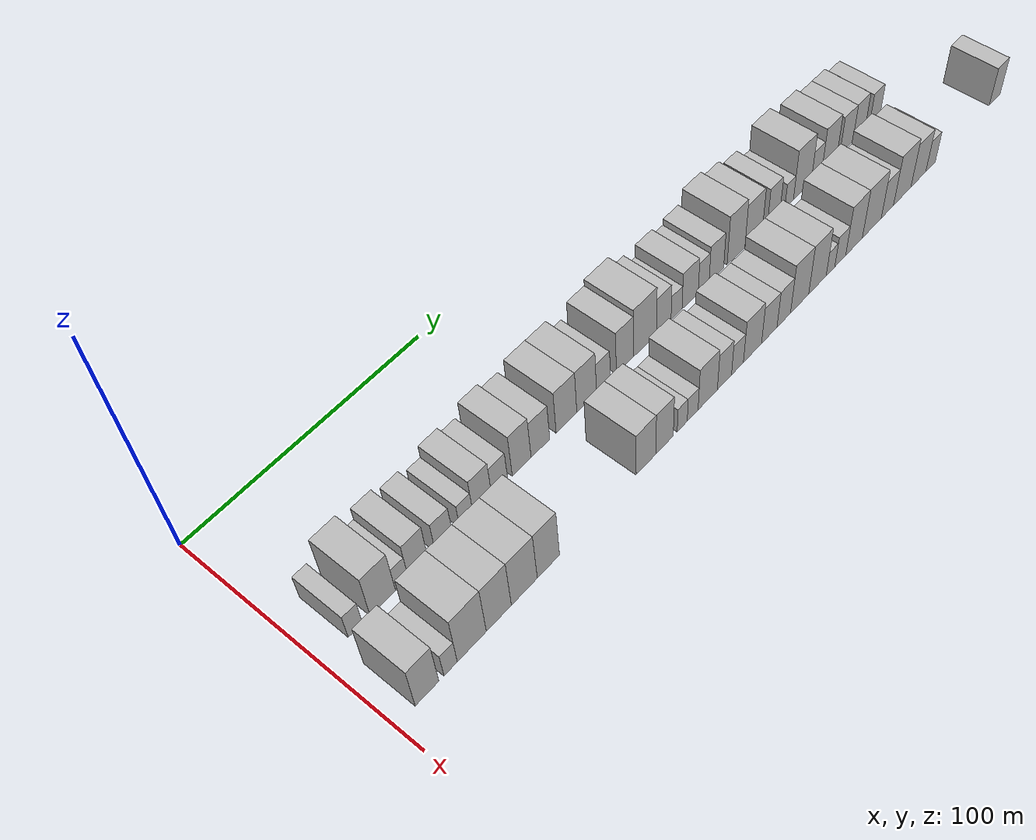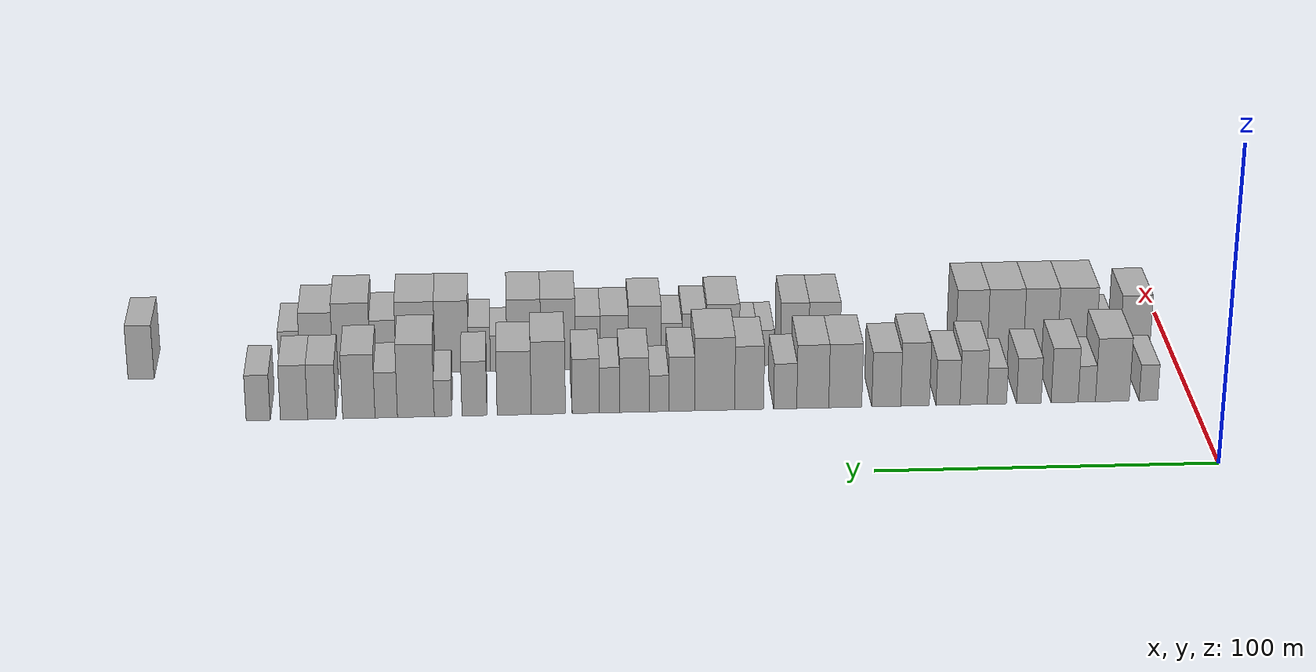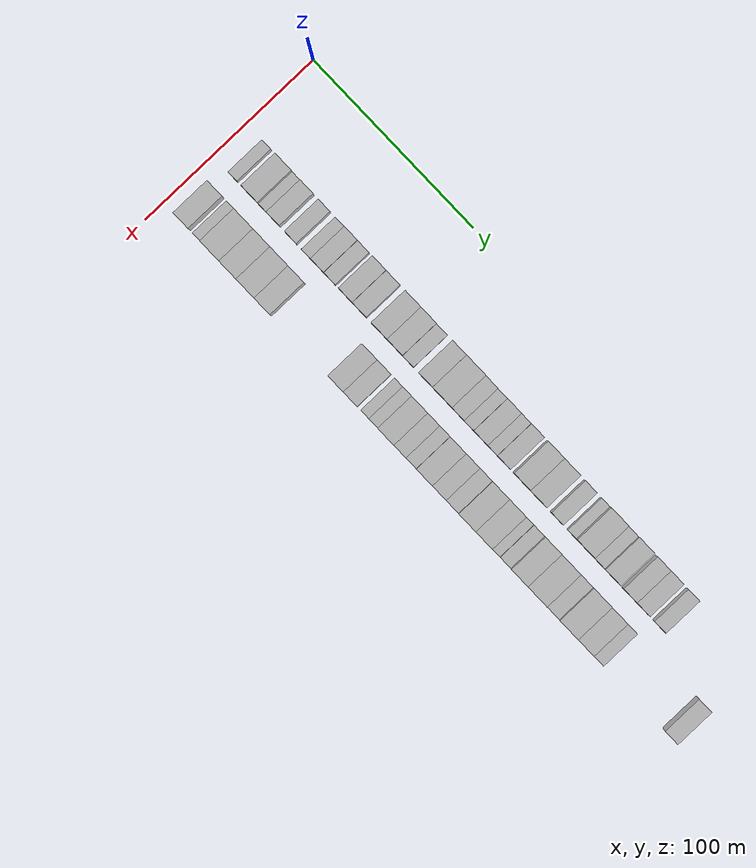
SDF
<sdf version="1.6">
 <world name="default">
  <model name="building_33">
   <static>1</static>
   <pose>50.0000 13.1931 0 0.000000 0.000000 0.000000</pose>
   <link name="link">
    <pose>0 0 6.00 0 0 0</pose>
    <collision name="collision"><geometry><box><size>20.0000 5.6048 12.0000</size></box></geometry></collision>
    <visual name="visual">
     <cast_shadows>0</cast_shadows>
     <geometry><box><size>20.0000 5.6048 12.0000</size></box></geometry>
     <material>
      <script>
       <uri>model://HANNAS_wall/materials/scripts</uri>
       <uri>model://HANNAS_wall/materials/textures</uri>
       <name>vrc/HANNAS_wall</name>
      </script>
     </material>
    </visual>
   </link>
  </model>
  <model name="building_34">
   <static>1</static>
   <pose>50.0000 24.0938 0 0.000000 0.000000 0.000000</pose>
   <link name="link">
    <pose>0 0 10.50 0 0 0</pose>
    <collision name="collision"><geometry><box><size>20.0000 10.1967 21.0000</size></box></geometry></collision>
    <visual name="visual">
     <cast_shadows>0</cast_shadows>
     <geometry><box><size>20.0000 10.1967 21.0000</size></box></geometry>
     <material>
      <script>
       <uri>model://HANNAS_wall/materials/scripts</uri>
       <uri>model://HANNAS_wall/materials/textures</uri>
       <name>vrc/HANNAS_wall</name>
      </script>
     </material>
    </visual>
   </link>
  </model>
  <model name="building_35">
   <static>1</static>
   <pose>50.0000 31.8113 0 0.000000 0.000000 0.000000</pose>
   <link name="link">
    <pose>0 0 6.00 0 0 0</pose>
    <collision name="collision"><geometry><box><size>20.0000 5.2383 12.0000</size></box></geometry></collision>
    <visual name="visual">
     <cast_shadows>0</cast_shadows>
     <geometry><box><size>20.0000 5.2383 12.0000</size></box></geometry>
     <material>
      <script>
       <uri>model://HANNAS_wall/materials/scripts</uri>
       <uri>model://HANNAS_wall/materials/textures</uri>
       <name>vrc/HANNAS_wall</name>
      </script>
     </material>
    </visual>
   </link>
  </model>
  <model name="building_36">
   <static>1</static>
   <pose>50.0000 38.5017 0 0.000000 0.000000 0.000000</pose>
   <link name="link">
    <pose>0 0 9.00 0 0 0</pose>
    <collision name="collision"><geometry><box><size>20.0000 8.1425 18.0000</size></box></geometry></collision>
    <visual name="visual">
     <cast_shadows>0</cast_shadows>
     <geometry><box><size>20.0000 8.1425 18.0000</size></box></geometry>
     <material>
      <script>
       <uri>model://HANNAS_wall/materials/scripts</uri>
       <uri>model://HANNAS_wall/materials/textures</uri>
       <name>vrc/HANNAS_wall</name>
      </script>
     </material>
    </visual>
   </link>
  </model>
  <model name="building_37">
   <static>1</static>
   <pose>50.0000 49.2781 0 0.000000 0.000000 0.000000</pose>
   <link name="link">
    <pose>0 0 7.50 0 0 0</pose>
    <collision name="collision"><geometry><box><size>20.0000 7.4103 15.0000</size></box></geometry></collision>
    <visual name="visual">
     <cast_shadows>0</cast_shadows>
     <geometry><box><size>20.0000 7.4103 15.0000</size></box></geometry>
     <material>
      <script>
       <uri>model://HANNAS_wall/materials/scripts</uri>
       <uri>model://HANNAS_wall/materials/textures</uri>
       <name>vrc/HANNAS_wall</name>
      </script>
     </material>
    </visual>
   </link>
  </model>
  <model name="building_38">
   <static>1</static>
   <pose>50.0000 58.9026 0 0.000000 0.000000 0.000000</pose>
   <link name="link">
    <pose>0 0 6.00 0 0 0</pose>
    <collision name="collision"><geometry><box><size>20.0000 5.8385 12.0000</size></box></geometry></collision>
    <visual name="visual">
     <cast_shadows>0</cast_shadows>
     <geometry><box><size>20.0000 5.8385 12.0000</size></box></geometry>
     <material>
      <script>
       <uri>model://HANNAS_wall/materials/scripts</uri>
       <uri>model://HANNAS_wall/materials/textures</uri>
       <name>vrc/HANNAS_wall</name>
      </script>
     </material>
    </visual>
   </link>
  </model>
  <model name="building_39">
   <static>1</static>
   <pose>50.0000 65.9199 0 0.000000 0.000000 0.000000</pose>
   <link name="link">
    <pose>0 0 9.00 0 0 0</pose>
    <collision name="collision"><geometry><box><size>20.0000 8.1960 18.0000</size></box></geometry></collision>
    <visual name="visual">
     <cast_shadows>0</cast_shadows>
     <geometry><box><size>20.0000 8.1960 18.0000</size></box></geometry>
     <material>
      <script>
       <uri>model://HANNAS_wall/materials/scripts</uri>
       <uri>model://HANNAS_wall/materials/textures</uri>
       <name>vrc/HANNAS_wall</name>
      </script>
     </material>
    </visual>
   </link>
  </model>
  <model name="building_40">
   <static>1</static>
   <pose>50.0000 73.6145 0 0.000000 0.000000 0.000000</pose>
   <link name="link">
    <pose>0 0 7.50 0 0 0</pose>
    <collision name="collision"><geometry><box><size>20.0000 7.1932 15.0000</size></box></geometry></collision>
    <visual name="visual">
     <cast_shadows>0</cast_shadows>
     <geometry><box><size>20.0000 7.1932 15.0000</size></box></geometry>
     <material>
      <script>
       <uri>model://HANNAS_wall/materials/scripts</uri>
       <uri>model://HANNAS_wall/materials/textures</uri>
       <name>vrc/HANNAS_wall</name>
      </script>
     </material>
    </visual>
   </link>
  </model>
  <model name="building_41">
   <static>1</static>
   <pose>50.0000 83.5099 0 0.000000 0.000000 0.000000</pose>
   <link name="link">
    <pose>0 0 10.50 0 0 0</pose>
    <collision name="collision"><geometry><box><size>20.0000 8.5977 21.0000</size></box></geometry></collision>
    <visual name="visual">
     <cast_shadows>0</cast_shadows>
     <geometry><box><size>20.0000 8.5977 21.0000</size></box></geometry>
     <material>
      <script>
       <uri>model://HANNAS_wall/materials/scripts</uri>
       <uri>model://HANNAS_wall/materials/textures</uri>
       <name>vrc/HANNAS_wall</name>
      </script>
     </material>
    </visual>
   </link>
  </model>
  <model name="building_42">
   <static>1</static>
   <pose>50.0000 92.1549 0 0.000000 0.000000 0.000000</pose>
   <link name="link">
    <pose>0 0 9.00 0 0 0</pose>
    <collision name="collision"><geometry><box><size>20.0000 8.6923 18.0000</size></box></geometry></collision>
    <visual name="visual">
     <cast_shadows>0</cast_shadows>
     <geometry><box><size>20.0000 8.6923 18.0000</size></box></geometry>
     <material>
      <script>
       <uri>model://HANNAS_wall/materials/scripts</uri>
       <uri>model://HANNAS_wall/materials/textures</uri>
       <name>vrc/HANNAS_wall</name>
      </script>
     </material>
    </visual>
   </link>
  </model>
  <model name="building_43">
   <static>1</static>
   <pose>50.0000 104.4483 0 0.000000 0.000000 0.000000</pose>
   <link name="link">
    <pose>0 0 10.50 0 0 0</pose>
    <collision name="collision"><geometry><box><size>20.0000 9.8944 21.0000</size></box></geometry></collision>
    <visual name="visual">
     <cast_shadows>0</cast_shadows>
     <geometry><box><size>20.0000 9.8944 21.0000</size></box></geometry>
     <material>
      <script>
       <uri>model://HANNAS_wall/materials/scripts</uri>
       <uri>model://HANNAS_wall/materials/textures</uri>
       <name>vrc/HANNAS_wall</name>
      </script>
     </material>
    </visual>
   </link>
  </model>
  <model name="building_44">
   <static>1</static>
   <pose>50.0000 114.1976 0 0.000000 0.000000 0.000000</pose>
   <link name="link">
    <pose>0 0 10.50 0 0 0</pose>
    <collision name="collision"><geometry><box><size>20.0000 9.6041 21.0000</size></box></geometry></collision>
    <visual name="visual">
     <cast_shadows>0</cast_shadows>
     <geometry><box><size>20.0000 9.6041 21.0000</size></box></geometry>
     <material>
      <script>
       <uri>model://HANNAS_wall/materials/scripts</uri>
       <uri>model://HANNAS_wall/materials/textures</uri>
       <name>vrc/HANNAS_wall</name>
      </script>
     </material>
    </visual>
   </link>
  </model>
  <model name="building_45">
   <static>1</static>
   <pose>50.0000 122.4412 0 0.000000 0.000000 0.000000</pose>
   <link name="link">
    <pose>0 0 7.50 0 0 0</pose>
    <collision name="collision"><geometry><box><size>20.0000 6.8831 15.0000</size></box></geometry></collision>
    <visual name="visual">
     <cast_shadows>0</cast_shadows>
     <geometry><box><size>20.0000 6.8831 15.0000</size></box></geometry>
     <material>
      <script>
       <uri>model://HANNAS_wall/materials/scripts</uri>
       <uri>model://HANNAS_wall/materials/textures</uri>
       <name>vrc/HANNAS_wall</name>
      </script>
     </material>
    </visual>
   </link>
  </model>
  <model name="building_46">
   <static>1</static>
   <pose>50.0000 133.2129 0 0.000000 0.000000 0.000000</pose>
   <link name="link">
    <pose>0 0 10.50 0 0 0</pose>
    <collision name="collision"><geometry><box><size>20.0000 8.6603 21.0000</size></box></geometry></collision>
    <visual name="visual">
     <cast_shadows>0</cast_shadows>
     <geometry><box><size>20.0000 8.6603 21.0000</size></box></geometry>
     <material>
      <script>
       <uri>model://HANNAS_wall/materials/scripts</uri>
       <uri>model://HANNAS_wall/materials/textures</uri>
       <name>vrc/HANNAS_wall</name>
      </script>
     </material>
    </visual>
   </link>
  </model>
  <model name="building_47">
   <static>1</static>
   <pose>50.0000 143.5383 0 0.000000 0.000000 0.000000</pose>
   <link name="link">
    <pose>0 0 12.00 0 0 0</pose>
    <collision name="collision"><geometry><box><size>20.0000 11.9904 24.0000</size></box></geometry></collision>
    <visual name="visual">
     <cast_shadows>0</cast_shadows>
     <geometry><box><size>20.0000 11.9904 24.0000</size></box></geometry>
     <material>
      <script>
       <uri>model://HANNAS_wall/materials/scripts</uri>
       <uri>model://HANNAS_wall/materials/textures</uri>
       <name>vrc/HANNAS_wall</name>
      </script>
     </material>
    </visual>
   </link>
  </model>
  <model name="building_48">
   <static>1</static>
   <pose>50.0000 153.3709 0 0.000000 0.000000 0.000000</pose>
   <link name="link">
    <pose>0 0 9.00 0 0 0</pose>
    <collision name="collision"><geometry><box><size>20.0000 7.6747 18.0000</size></box></geometry></collision>
    <visual name="visual">
     <cast_shadows>0</cast_shadows>
     <geometry><box><size>20.0000 7.6747 18.0000</size></box></geometry>
     <material>
      <script>
       <uri>model://HANNAS_wall/materials/scripts</uri>
       <uri>model://HANNAS_wall/materials/textures</uri>
       <name>vrc/HANNAS_wall</name>
      </script>
     </material>
    </visual>
   </link>
  </model>
  <model name="building_49">
   <static>1</static>
   <pose>50.0000 160.1628 0 0.000000 0.000000 0.000000</pose>
   <link name="link">
    <pose>0 0 6.00 0 0 0</pose>
    <collision name="collision"><geometry><box><size>20.0000 5.9092 12.0000</size></box></geometry></collision>
    <visual name="visual">
     <cast_shadows>0</cast_shadows>
     <geometry><box><size>20.0000 5.9092 12.0000</size></box></geometry>
     <material>
      <script>
       <uri>model://HANNAS_wall/materials/scripts</uri>
       <uri>model://HANNAS_wall/materials/textures</uri>
       <name>vrc/HANNAS_wall</name>
      </script>
     </material>
    </visual>
   </link>
  </model>
  <model name="building_50">
   <static>1</static>
   <pose>50.0000 167.4937 0 0.000000 0.000000 0.000000</pose>
   <link name="link">
    <pose>0 0 9.00 0 0 0</pose>
    <collision name="collision"><geometry><box><size>20.0000 8.7525 18.0000</size></box></geometry></collision>
    <visual name="visual">
     <cast_shadows>0</cast_shadows>
     <geometry><box><size>20.0000 8.7525 18.0000</size></box></geometry>
     <material>
      <script>
       <uri>model://HANNAS_wall/materials/scripts</uri>
       <uri>model://HANNAS_wall/materials/textures</uri>
       <name>vrc/HANNAS_wall</name>
      </script>
     </material>
    </visual>
   </link>
  </model>
  <model name="building_51">
   <static>1</static>
   <pose>50.0000 174.8730 0 0.000000 0.000000 0.000000</pose>
   <link name="link">
    <pose>0 0 7.50 0 0 0</pose>
    <collision name="collision"><geometry><box><size>20.0000 6.0060 15.0000</size></box></geometry></collision>
    <visual name="visual">
     <cast_shadows>0</cast_shadows>
     <geometry><box><size>20.0000 6.0060 15.0000</size></box></geometry>
     <material>
      <script>
       <uri>model://HANNAS_wall/materials/scripts</uri>
       <uri>model://HANNAS_wall/materials/textures</uri>
       <name>vrc/HANNAS_wall</name>
      </script>
     </material>
    </visual>
   </link>
  </model>
  <model name="building_52">
   <static>1</static>
   <pose>50.0000 181.9415 0 0.000000 0.000000 0.000000</pose>
   <link name="link">
    <pose>0 0 9.00 0 0 0</pose>
    <collision name="collision"><geometry><box><size>20.0000 8.1310 18.0000</size></box></geometry></collision>
    <visual name="visual">
     <cast_shadows>0</cast_shadows>
     <geometry><box><size>20.0000 8.1310 18.0000</size></box></geometry>
     <material>
      <script>
       <uri>model://HANNAS_wall/materials/scripts</uri>
       <uri>model://HANNAS_wall/materials/textures</uri>
       <name>vrc/HANNAS_wall</name>
      </script>
     </material>
    </visual>
   </link>
  </model>
  <model name="building_53">
   <static>1</static>
   <pose>50.0000 193.0817 0 0.000000 0.000000 0.000000</pose>
   <link name="link">
    <pose>0 0 12.00 0 0 0</pose>
    <collision name="collision"><geometry><box><size>20.0000 10.1494 24.0000</size></box></geometry></collision>
    <visual name="visual">
     <cast_shadows>0</cast_shadows>
     <geometry><box><size>20.0000 10.1494 24.0000</size></box></geometry>
     <material>
      <script>
       <uri>model://HANNAS_wall/materials/scripts</uri>
       <uri>model://HANNAS_wall/materials/textures</uri>
       <name>vrc/HANNAS_wall</name>
      </script>
     </material>
    </visual>
   </link>
  </model>
  <model name="building_54">
   <static>1</static>
   <pose>50.0000 203.2365 0 0.000000 0.000000 0.000000</pose>
   <link name="link">
    <pose>0 0 10.50 0 0 0</pose>
    <collision name="collision"><geometry><box><size>20.0000 10.1603 21.0000</size></box></geometry></collision>
    <visual name="visual">
     <cast_shadows>0</cast_shadows>
     <geometry><box><size>20.0000 10.1603 21.0000</size></box></geometry>
     <material>
      <script>
       <uri>model://HANNAS_wall/materials/scripts</uri>
       <uri>model://HANNAS_wall/materials/textures</uri>
       <name>vrc/HANNAS_wall</name>
      </script>
     </material>
    </visual>
   </link>
  </model>
  <model name="building_55">
   <static>1</static>
   <pose>50.0000 215.0271 0 0.000000 0.000000 0.000000</pose>
   <link name="link">
    <pose>0 0 9.00 0 0 0</pose>
    <collision name="collision"><geometry><box><size>20.0000 7.4208 18.0000</size></box></geometry></collision>
    <visual name="visual">
     <cast_shadows>0</cast_shadows>
     <geometry><box><size>20.0000 7.4208 18.0000</size></box></geometry>
     <material>
      <script>
       <uri>model://HANNAS_wall/materials/scripts</uri>
       <uri>model://HANNAS_wall/materials/textures</uri>
       <name>vrc/HANNAS_wall</name>
      </script>
     </material>
    </visual>
   </link>
  </model>
  <model name="building_56">
   <static>1</static>
   <pose>50.0000 224.3459 0 0.000000 0.000000 0.000000</pose>
   <link name="link">
    <pose>0 0 6.00 0 0 0</pose>
    <collision name="collision"><geometry><box><size>20.0000 5.2167 12.0000</size></box></geometry></collision>
    <visual name="visual">
     <cast_shadows>0</cast_shadows>
     <geometry><box><size>20.0000 5.2167 12.0000</size></box></geometry>
     <material>
      <script>
       <uri>model://HANNAS_wall/materials/scripts</uri>
       <uri>model://HANNAS_wall/materials/textures</uri>
       <name>vrc/HANNAS_wall</name>
      </script>
     </material>
    </visual>
   </link>
  </model>
  <model name="building_57">
   <static>1</static>
   <pose>50.0000 232.4189 0 0.000000 0.000000 0.000000</pose>
   <link name="link">
    <pose>0 0 12.00 0 0 0</pose>
    <collision name="collision"><geometry><box><size>20.0000 10.9293 24.0000</size></box></geometry></collision>
    <visual name="visual">
     <cast_shadows>0</cast_shadows>
     <geometry><box><size>20.0000 10.9293 24.0000</size></box></geometry>
     <material>
      <script>
       <uri>model://HANNAS_wall/materials/scripts</uri>
       <uri>model://HANNAS_wall/materials/textures</uri>
       <name>vrc/HANNAS_wall</name>
      </script>
     </material>
    </visual>
   </link>
  </model>
  <model name="building_58">
   <static>1</static>
   <pose>50.0000 241.2010 0 0.000000 0.000000 0.000000</pose>
   <link name="link">
    <pose>0 0 7.50 0 0 0</pose>
    <collision name="collision"><geometry><box><size>20.0000 6.6349 15.0000</size></box></geometry></collision>
    <visual name="visual">
     <cast_shadows>0</cast_shadows>
     <geometry><box><size>20.0000 6.6349 15.0000</size></box></geometry>
     <material>
      <script>
       <uri>model://HANNAS_wall/materials/scripts</uri>
       <uri>model://HANNAS_wall/materials/textures</uri>
       <name>vrc/HANNAS_wall</name>
      </script>
     </material>
    </visual>
   </link>
  </model>
  <model name="building_59">
   <static>1</static>
   <pose>50.0000 249.2946 0 0.000000 0.000000 0.000000</pose>
   <link name="link">
    <pose>0 0 10.50 0 0 0</pose>
    <collision name="collision"><geometry><box><size>20.0000 9.5523 21.0000</size></box></geometry></collision>
    <visual name="visual">
     <cast_shadows>0</cast_shadows>
     <geometry><box><size>20.0000 9.5523 21.0000</size></box></geometry>
     <material>
      <script>
       <uri>model://HANNAS_wall/materials/scripts</uri>
       <uri>model://HANNAS_wall/materials/textures</uri>
       <name>vrc/HANNAS_wall</name>
      </script>
     </material>
    </visual>
   </link>
  </model>
  <model name="building_60">
   <static>1</static>
   <pose>50.0000 260.2479 0 0.000000 0.000000 0.000000</pose>
   <link name="link">
    <pose>0 0 9.00 0 0 0</pose>
    <collision name="collision"><geometry><box><size>20.0000 8.3544 18.0000</size></box></geometry></collision>
    <visual name="visual">
     <cast_shadows>0</cast_shadows>
     <geometry><box><size>20.0000 8.3544 18.0000</size></box></geometry>
     <material>
      <script>
       <uri>model://HANNAS_wall/materials/scripts</uri>
       <uri>model://HANNAS_wall/materials/textures</uri>
       <name>vrc/HANNAS_wall</name>
      </script>
     </material>
    </visual>
   </link>
  </model>
  <model name="building_61">
   <static>1</static>
   <pose>50.0000 268.4460 0 0.000000 0.000000 0.000000</pose>
   <link name="link">
    <pose>0 0 9.00 0 0 0</pose>
    <collision name="collision"><geometry><box><size>20.0000 8.0417 18.0000</size></box></geometry></collision>
    <visual name="visual">
     <cast_shadows>0</cast_shadows>
     <geometry><box><size>20.0000 8.0417 18.0000</size></box></geometry>
     <material>
      <script>
       <uri>model://HANNAS_wall/materials/scripts</uri>
       <uri>model://HANNAS_wall/materials/textures</uri>
       <name>vrc/HANNAS_wall</name>
      </script>
     </material>
    </visual>
   </link>
  </model>
  <model name="building_62">
   <static>1</static>
   <pose>50.0000 279.0263 0 0.000000 0.000000 0.000000</pose>
   <link name="link">
    <pose>0 0 7.50 0 0 0</pose>
    <collision name="collision"><geometry><box><size>20.0000 7.1189 15.0000</size></box></geometry></collision>
    <visual name="visual">
     <cast_shadows>0</cast_shadows>
     <geometry><box><size>20.0000 7.1189 15.0000</size></box></geometry>
     <material>
      <script>
       <uri>model://HANNAS_wall/materials/scripts</uri>
       <uri>model://HANNAS_wall/materials/textures</uri>
       <name>vrc/HANNAS_wall</name>
      </script>
     </material>
    </visual>
   </link>
  </model>
  <model name="building_88">
   <static>1</static>
   <pose>79.0000 12.2239 0 0.000000 0.000000 0.000000</pose>
   <link name="link">
    <pose>0 0 10.50 0 0 0</pose>
    <collision name="collision"><geometry><box><size>20.0000 9.3211 21.0000</size></box></geometry></collision>
    <visual name="visual">
     <cast_shadows>0</cast_shadows>
     <geometry><box><size>20.0000 9.3211 21.0000</size></box></geometry>
     <material>
      <script>
       <uri>model://HANNAS_wall/materials/scripts</uri>
       <uri>model://HANNAS_wall/materials/textures</uri>
       <name>vrc/HANNAS_wall</name>
      </script>
     </material>
    </visual>
   </link>
  </model>
  <model name="building_89">
   <static>1</static>
   <pose>79.0000 21.5728 0 0.000000 0.000000 0.000000</pose>
   <link name="link">
    <pose>0 0 6.00 0 0 0</pose>
    <collision name="collision"><geometry><box><size>20.0000 5.3769 12.0000</size></box></geometry></collision>
    <visual name="visual">
     <cast_shadows>0</cast_shadows>
     <geometry><box><size>20.0000 5.3769 12.0000</size></box></geometry>
     <material>
      <script>
       <uri>model://HANNAS_wall/materials/scripts</uri>
       <uri>model://HANNAS_wall/materials/textures</uri>
       <name>vrc/HANNAS_wall</name>
      </script>
     </material>
    </visual>
   </link>
  </model>
  <model name="building_90">
   <static>1</static>
   <pose>79.0000 30.2121 0 0.000000 0.000000 0.000000</pose>
   <link name="link">
    <pose>0 0 12.00 0 0 0</pose>
    <collision name="collision"><geometry><box><size>20.0000 11.9016 24.0000</size></box></geometry></collision>
    <visual name="visual">
     <cast_shadows>0</cast_shadows>
     <geometry><box><size>20.0000 11.9016 24.0000</size></box></geometry>
     <material>
      <script>
       <uri>model://HANNAS_wall/materials/scripts</uri>
       <uri>model://HANNAS_wall/materials/textures</uri>
       <name>vrc/HANNAS_wall</name>
      </script>
     </material>
    </visual>
   </link>
  </model>
  <model name="building_91">
   <static>1</static>
   <pose>79.0000 41.4280 0 0.000000 0.000000 0.000000</pose>
   <link name="link">
    <pose>0 0 12.00 0 0 0</pose>
    <collision name="collision"><geometry><box><size>20.0000 10.5303 24.0000</size></box></geometry></collision>
    <visual name="visual">
     <cast_shadows>0</cast_shadows>
     <geometry><box><size>20.0000 10.5303 24.0000</size></box></geometry>
     <material>
      <script>
       <uri>model://HANNAS_wall/materials/scripts</uri>
       <uri>model://HANNAS_wall/materials/textures</uri>
       <name>vrc/HANNAS_wall</name>
      </script>
     </material>
    </visual>
   </link>
  </model>
  <model name="building_92">
   <static>1</static>
   <pose>79.0000 52.2700 0 0.000000 0.000000 0.000000</pose>
   <link name="link">
    <pose>0 0 12.00 0 0 0</pose>
    <collision name="collision"><geometry><box><size>20.0000 11.1536 24.0000</size></box></geometry></collision>
    <visual name="visual">
     <cast_shadows>0</cast_shadows>
     <geometry><box><size>20.0000 11.1536 24.0000</size></box></geometry>
     <material>
      <script>
       <uri>model://HANNAS_wall/materials/scripts</uri>
       <uri>model://HANNAS_wall/materials/textures</uri>
       <name>vrc/HANNAS_wall</name>
      </script>
     </material>
    </visual>
   </link>
  </model>
  <model name="building_93">
   <static>1</static>
   <pose>79.0000 62.7478 0 0.000000 0.000000 0.000000</pose>
   <link name="link">
    <pose>0 0 12.00 0 0 0</pose>
    <collision name="collision"><geometry><box><size>20.0000 9.8019 24.0000</size></box></geometry></collision>
    <visual name="visual">
     <cast_shadows>0</cast_shadows>
     <geometry><box><size>20.0000 9.8019 24.0000</size></box></geometry>
     <material>
      <script>
       <uri>model://HANNAS_wall/materials/scripts</uri>
       <uri>model://HANNAS_wall/materials/textures</uri>
       <name>vrc/HANNAS_wall</name>
      </script>
     </material>
    </visual>
   </link>
  </model>
  <model name="building_94">
   <static>1</static>
   <pose>79.0000 108.0521 0 0.000000 0.000000 0.000000</pose>
   <link name="link">
    <pose>0 0 10.50 0 0 0</pose>
    <collision name="collision"><geometry><box><size>20.0000 9.6023 21.0000</size></box></geometry></collision>
    <visual name="visual">
     <cast_shadows>0</cast_shadows>
     <geometry><box><size>20.0000 9.6023 21.0000</size></box></geometry>
     <material>
      <script>
       <uri>model://HANNAS_wall/materials/scripts</uri>
       <uri>model://HANNAS_wall/materials/textures</uri>
       <name>vrc/HANNAS_wall</name>
      </script>
     </material>
    </visual>
   </link>
  </model>
  <model name="building_95">
   <static>1</static>
   <pose>79.0000 117.1748 0 0.000000 0.000000 0.000000</pose>
   <link name="link">
    <pose>0 0 10.50 0 0 0</pose>
    <collision name="collision"><geometry><box><size>20.0000 8.6432 21.0000</size></box></geometry></collision>
    <visual name="visual">
     <cast_shadows>0</cast_shadows>
     <geometry><box><size>20.0000 8.6432 21.0000</size></box></geometry>
     <material>
      <script>
       <uri>model://HANNAS_wall/materials/scripts</uri>
       <uri>model://HANNAS_wall/materials/textures</uri>
       <name>vrc/HANNAS_wall</name>
      </script>
     </material>
    </visual>
   </link>
  </model>
  <model name="building_96">
   <static>1</static>
   <pose>79.0000 126.0329 0 0.000000 0.000000 0.000000</pose>
   <link name="link">
    <pose>0 0 6.00 0 0 0</pose>
    <collision name="collision"><geometry><box><size>20.0000 5.0730 12.0000</size></box></geometry></collision>
    <visual name="visual">
     <cast_shadows>0</cast_shadows>
     <geometry><box><size>20.0000 5.0730 12.0000</size></box></geometry>
     <material>
      <script>
       <uri>model://HANNAS_wall/materials/scripts</uri>
       <uri>model://HANNAS_wall/materials/textures</uri>
       <name>vrc/HANNAS_wall</name>
      </script>
     </material>
    </visual>
   </link>
  </model>
  <model name="building_97">
   <static>1</static>
   <pose>79.0000 131.3431 0 0.000000 0.000000 0.000000</pose>
   <link name="link">
    <pose>0 0 6.00 0 0 0</pose>
    <collision name="collision"><geometry><box><size>20.0000 5.5472 12.0000</size></box></geometry></collision>
    <visual name="visual">
     <cast_shadows>0</cast_shadows>
     <geometry><box><size>20.0000 5.5472 12.0000</size></box></geometry>
     <material>
      <script>
       <uri>model://HANNAS_wall/materials/scripts</uri>
       <uri>model://HANNAS_wall/materials/textures</uri>
       <name>vrc/HANNAS_wall</name>
      </script>
     </material>
    </visual>
   </link>
  </model>
  <model name="building_98">
   <static>1</static>
   <pose>79.0000 139.1339 0 0.000000 0.000000 0.000000</pose>
   <link name="link">
    <pose>0 0 10.50 0 0 0</pose>
    <collision name="collision"><geometry><box><size>20.0000 10.0345 21.0000</size></box></geometry></collision>
    <visual name="visual">
     <cast_shadows>0</cast_shadows>
     <geometry><box><size>20.0000 10.0345 21.0000</size></box></geometry>
     <material>
      <script>
       <uri>model://HANNAS_wall/materials/scripts</uri>
       <uri>model://HANNAS_wall/materials/textures</uri>
       <name>vrc/HANNAS_wall</name>
      </script>
     </material>
    </visual>
   </link>
  </model>
  <model name="building_99">
   <static>1</static>
   <pose>79.0000 147.9029 0 0.000000 0.000000 0.000000</pose>
   <link name="link">
    <pose>0 0 9.00 0 0 0</pose>
    <collision name="collision"><geometry><box><size>20.0000 7.5033 18.0000</size></box></geometry></collision>
    <visual name="visual">
     <cast_shadows>0</cast_shadows>
     <geometry><box><size>20.0000 7.5033 18.0000</size></box></geometry>
     <material>
      <script>
       <uri>model://HANNAS_wall/materials/scripts</uri>
       <uri>model://HANNAS_wall/materials/textures</uri>
       <name>vrc/HANNAS_wall</name>
      </script>
     </material>
    </visual>
   </link>
  </model>
  <model name="building_100">
   <static>1</static>
   <pose>79.0000 154.8564 0 0.000000 0.000000 0.000000</pose>
   <link name="link">
    <pose>0 0 7.50 0 0 0</pose>
    <collision name="collision"><geometry><box><size>20.0000 6.4038 15.0000</size></box></geometry></collision>
    <visual name="visual">
     <cast_shadows>0</cast_shadows>
     <geometry><box><size>20.0000 6.4038 15.0000</size></box></geometry>
     <material>
      <script>
       <uri>model://HANNAS_wall/materials/scripts</uri>
       <uri>model://HANNAS_wall/materials/textures</uri>
       <name>vrc/HANNAS_wall</name>
      </script>
     </material>
    </visual>
   </link>
  </model>
  <model name="building_101">
   <static>1</static>
   <pose>79.0000 163.0214 0 0.000000 0.000000 0.000000</pose>
   <link name="link">
    <pose>0 0 10.50 0 0 0</pose>
    <collision name="collision"><geometry><box><size>20.0000 9.9262 21.0000</size></box></geometry></collision>
    <visual name="visual">
     <cast_shadows>0</cast_shadows>
     <geometry><box><size>20.0000 9.9262 21.0000</size></box></geometry>
     <material>
      <script>
       <uri>model://HANNAS_wall/materials/scripts</uri>
       <uri>model://HANNAS_wall/materials/textures</uri>
       <name>vrc/HANNAS_wall</name>
      </script>
     </material>
    </visual>
   </link>
  </model>
  <model name="building_102">
   <static>1</static>
   <pose>79.0000 172.2947 0 0.000000 0.000000 0.000000</pose>
   <link name="link">
    <pose>0 0 9.00 0 0 0</pose>
    <collision name="collision"><geometry><box><size>20.0000 8.6204 18.0000</size></box></geometry></collision>
    <visual name="visual">
     <cast_shadows>0</cast_shadows>
     <geometry><box><size>20.0000 8.6204 18.0000</size></box></geometry>
     <material>
      <script>
       <uri>model://HANNAS_wall/materials/scripts</uri>
       <uri>model://HANNAS_wall/materials/textures</uri>
       <name>vrc/HANNAS_wall</name>
      </script>
     </material>
    </visual>
   </link>
  </model>
  <model name="building_103">
   <static>1</static>
   <pose>79.0000 180.4354 0 0.000000 0.000000 0.000000</pose>
   <link name="link">
    <pose>0 0 9.00 0 0 0</pose>
    <collision name="collision"><geometry><box><size>20.0000 7.6610 18.0000</size></box></geometry></collision>
    <visual name="visual">
     <cast_shadows>0</cast_shadows>
     <geometry><box><size>20.0000 7.6610 18.0000</size></box></geometry>
     <material>
      <script>
       <uri>model://HANNAS_wall/materials/scripts</uri>
       <uri>model://HANNAS_wall/materials/textures</uri>
       <name>vrc/HANNAS_wall</name>
      </script>
     </material>
    </visual>
   </link>
  </model>
  <model name="building_104">
   <static>1</static>
   <pose>79.0000 189.5141 0 0.000000 0.000000 0.000000</pose>
   <link name="link">
    <pose>0 0 12.00 0 0 0</pose>
    <collision name="collision"><geometry><box><size>20.0000 10.4965 24.0000</size></box></geometry></collision>
    <visual name="visual">
     <cast_shadows>0</cast_shadows>
     <geometry><box><size>20.0000 10.4965 24.0000</size></box></geometry>
     <material>
      <script>
       <uri>model://HANNAS_wall/materials/scripts</uri>
       <uri>model://HANNAS_wall/materials/textures</uri>
       <name>vrc/HANNAS_wall</name>
      </script>
     </material>
    </visual>
   </link>
  </model>
  <model name="building_105">
   <static>1</static>
   <pose>79.0000 199.9103 0 0.000000 0.000000 0.000000</pose>
   <link name="link">
    <pose>0 0 12.00 0 0 0</pose>
    <collision name="collision"><geometry><box><size>20.0000 10.2957 24.0000</size></box></geometry></collision>
    <visual name="visual">
     <cast_shadows>0</cast_shadows>
     <geometry><box><size>20.0000 10.2957 24.0000</size></box></geometry>
     <material>
      <script>
       <uri>model://HANNAS_wall/materials/scripts</uri>
       <uri>model://HANNAS_wall/materials/textures</uri>
       <name>vrc/HANNAS_wall</name>
      </script>
     </material>
    </visual>
   </link>
  </model>
  <model name="building_106">
   <static>1</static>
   <pose>79.0000 207.6223 0 0.000000 0.000000 0.000000</pose>
   <link name="link">
    <pose>0 0 6.00 0 0 0</pose>
    <collision name="collision"><geometry><box><size>20.0000 5.1283 12.0000</size></box></geometry></collision>
    <visual name="visual">
     <cast_shadows>0</cast_shadows>
     <geometry><box><size>20.0000 5.1283 12.0000</size></box></geometry>
     <material>
      <script>
       <uri>model://HANNAS_wall/materials/scripts</uri>
       <uri>model://HANNAS_wall/materials/textures</uri>
       <name>vrc/HANNAS_wall</name>
      </script>
     </material>
    </visual>
   </link>
  </model>
  <model name="building_107">
   <static>1</static>
   <pose>79.0000 213.4819 0 0.000000 0.000000 0.000000</pose>
   <link name="link">
    <pose>0 0 7.50 0 0 0</pose>
    <collision name="collision"><geometry><box><size>20.0000 6.5910 15.0000</size></box></geometry></collision>
    <visual name="visual">
     <cast_shadows>0</cast_shadows>
     <geometry><box><size>20.0000 6.5910 15.0000</size></box></geometry>
     <material>
      <script>
       <uri>model://HANNAS_wall/materials/scripts</uri>
       <uri>model://HANNAS_wall/materials/textures</uri>
       <name>vrc/HANNAS_wall</name>
      </script>
     </material>
    </visual>
   </link>
  </model>
  <model name="building_108">
   <static>1</static>
   <pose>79.0000 221.8971 0 0.000000 0.000000 0.000000</pose>
   <link name="link">
    <pose>0 0 12.00 0 0 0</pose>
    <collision name="collision"><geometry><box><size>20.0000 10.2394 24.0000</size></box></geometry></collision>
    <visual name="visual">
     <cast_shadows>0</cast_shadows>
     <geometry><box><size>20.0000 10.2394 24.0000</size></box></geometry>
     <material>
      <script>
       <uri>model://HANNAS_wall/materials/scripts</uri>
       <uri>model://HANNAS_wall/materials/textures</uri>
       <name>vrc/HANNAS_wall</name>
      </script>
     </material>
    </visual>
   </link>
  </model>
  <model name="building_109">
   <static>1</static>
   <pose>79.0000 232.9465 0 0.000000 0.000000 0.000000</pose>
   <link name="link">
    <pose>0 0 12.00 0 0 0</pose>
    <collision name="collision"><geometry><box><size>20.0000 11.8594 24.0000</size></box></geometry></collision>
    <visual name="visual">
     <cast_shadows>0</cast_shadows>
     <geometry><box><size>20.0000 11.8594 24.0000</size></box></geometry>
     <material>
      <script>
       <uri>model://HANNAS_wall/materials/scripts</uri>
       <uri>model://HANNAS_wall/materials/textures</uri>
       <name>vrc/HANNAS_wall</name>
      </script>
     </material>
    </visual>
   </link>
  </model>
  <model name="building_110">
   <static>1</static>
   <pose>79.0000 242.8006 0 0.000000 0.000000 0.000000</pose>
   <link name="link">
    <pose>0 0 9.00 0 0 0</pose>
    <collision name="collision"><geometry><box><size>20.0000 7.8486 18.0000</size></box></geometry></collision>
    <visual name="visual">
     <cast_shadows>0</cast_shadows>
     <geometry><box><size>20.0000 7.8486 18.0000</size></box></geometry>
     <material>
      <script>
       <uri>model://HANNAS_wall/materials/scripts</uri>
       <uri>model://HANNAS_wall/materials/textures</uri>
       <name>vrc/HANNAS_wall</name>
      </script>
     </material>
    </visual>
   </link>
  </model>
  <model name="building_111">
   <static>1</static>
   <pose>79.0000 252.4048 0 0.000000 0.000000 0.000000</pose>
   <link name="link">
    <pose>0 0 12.00 0 0 0</pose>
    <collision name="collision"><geometry><box><size>20.0000 11.3599 24.0000</size></box></geometry></collision>
    <visual name="visual">
     <cast_shadows>0</cast_shadows>
     <geometry><box><size>20.0000 11.3599 24.0000</size></box></geometry>
     <material>
      <script>
       <uri>model://HANNAS_wall/materials/scripts</uri>
       <uri>model://HANNAS_wall/materials/textures</uri>
       <name>vrc/HANNAS_wall</name>
      </script>
     </material>
    </visual>
   </link>
  </model>
  <model name="building_112">
   <static>1</static>
   <pose>79.0000 263.0529 0 0.000000 0.000000 0.000000</pose>
   <link name="link">
    <pose>0 0 10.50 0 0 0</pose>
    <collision name="collision"><geometry><box><size>20.0000 9.9362 21.0000</size></box></geometry></collision>
    <visual name="visual">
     <cast_shadows>0</cast_shadows>
     <geometry><box><size>20.0000 9.9362 21.0000</size></box></geometry>
     <material>
      <script>
       <uri>model://HANNAS_wall/materials/scripts</uri>
       <uri>model://HANNAS_wall/materials/textures</uri>
       <name>vrc/HANNAS_wall</name>
      </script>
     </material>
    </visual>
   </link>
  </model>
  <model name="building_113">
   <static>1</static>
   <pose>79.0000 271.2207 0 0.000000 0.000000 0.000000</pose>
   <link name="link">
    <pose>0 0 7.50 0 0 0</pose>
    <collision name="collision"><geometry><box><size>20.0000 6.3993 15.0000</size></box></geometry></collision>
    <visual name="visual">
     <cast_shadows>0</cast_shadows>
     <geometry><box><size>20.0000 6.3993 15.0000</size></box></geometry>
     <material>
      <script>
       <uri>model://HANNAS_wall/materials/scripts</uri>
       <uri>model://HANNAS_wall/materials/textures</uri>
       <name>vrc/HANNAS_wall</name>
      </script>
     </material>
    </visual>
   </link>
  </model>
  <model name="building_114">
   <static>1</static>
   <pose>79.0000 316.2659 0 0.000000 0.000000 0.000000</pose>
   <link name="link">
    <pose>0 0 9.00 0 0 0</pose>
    <collision name="collision"><geometry><box><size>20.0000 7.8971 18.0000</size></box></geometry></collision>
    <visual name="visual">
     <cast_shadows>0</cast_shadows>
     <geometry><box><size>20.0000 7.8971 18.0000</size></box></geometry>
     <material>
      <script>
       <uri>model://HANNAS_wall/materials/scripts</uri>
       <uri>model://HANNAS_wall/materials/textures</uri>
       <name>vrc/HANNAS_wall</name>
      </script>
     </material>
    </visual>
   </link>
  </model>
 </world>
</sdf>
